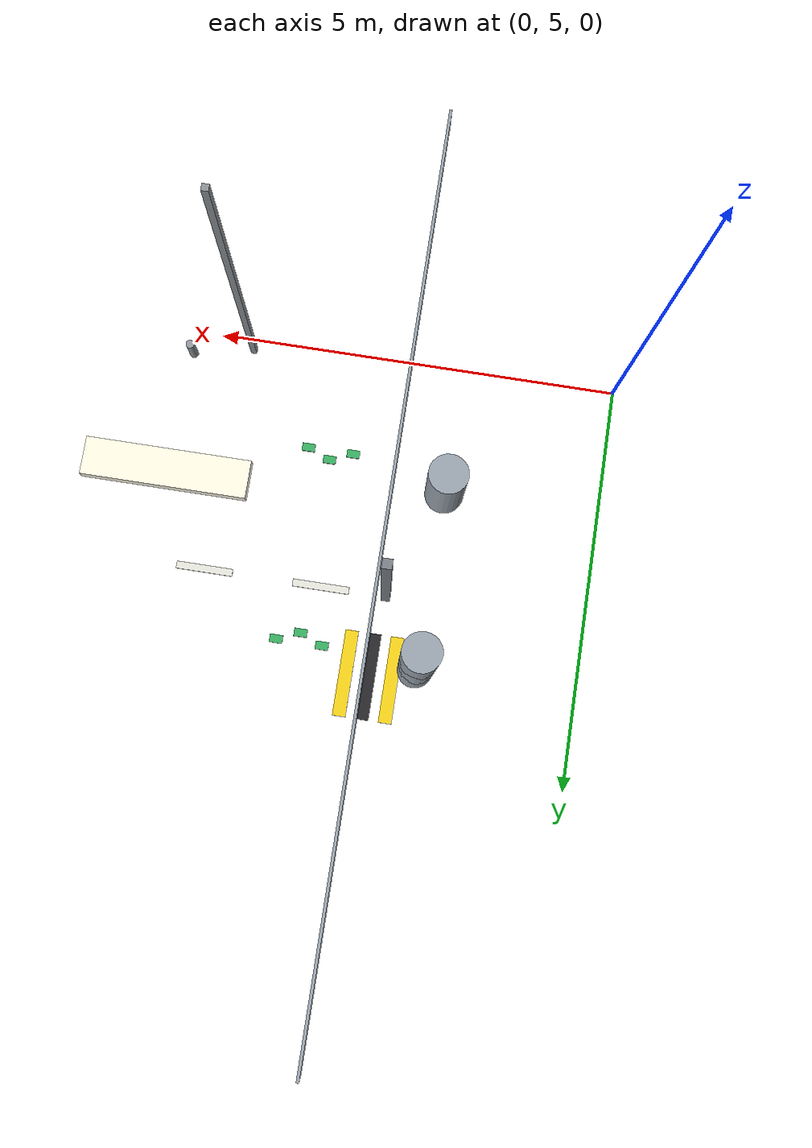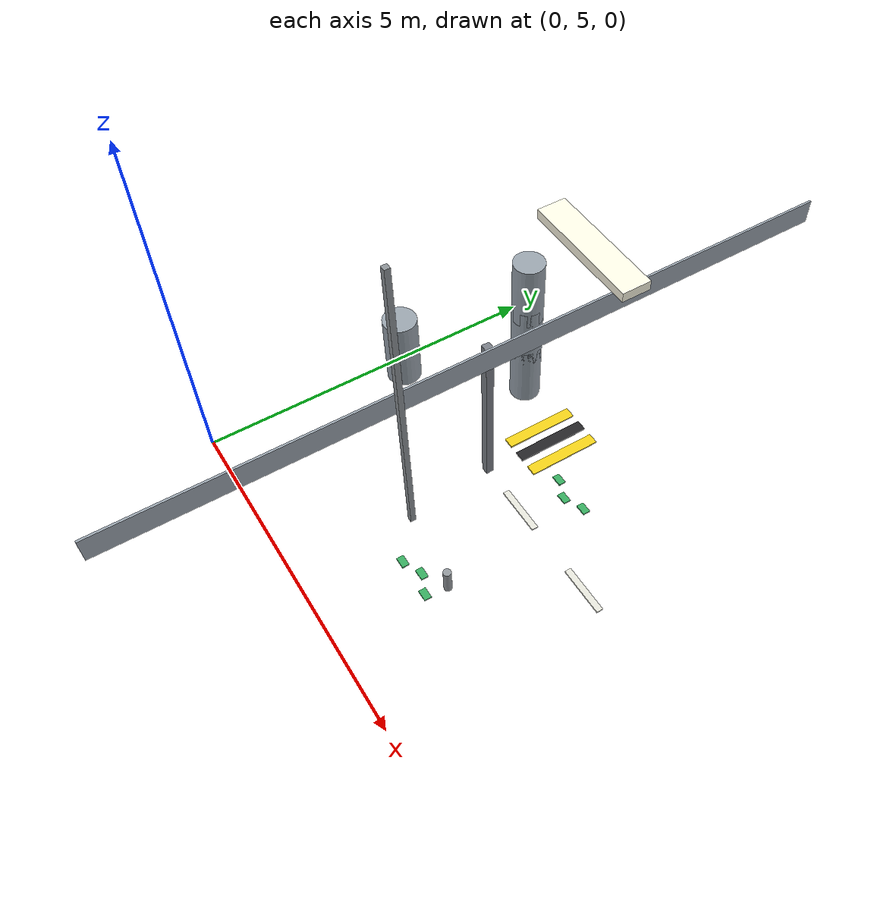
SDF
<sdf version="1.10">
 <world name="textile_mill">
  <model name="lamp_0_1">
   <static>true</static>
   <pose>4.200 8.000 5.280 0 0 0</pose>
   <link name="l">
    <collision name="c"><geometry><box><size>1.300 0.300 0.100</size></box></geometry></collision>
    <visual name="v">
     <geometry><box><size>1.300 0.300 0.100</size></box></geometry>
     <material>
      <ambient>1.000 0.980 0.900 1.0</ambient>
      <diffuse>1.000 0.980 0.900 1.0</diffuse>
      <specular>0.18 0.18 0.18 1</specular>
      <pbr><metal><roughness>0.3</roughness><metalness>0.0</metalness></metal></pbr>
     </material>
    </visual>
   </link>
  </model>
  <model name="clnz_carding_1_1">
   <static>true</static>
   <pose>4.850 6.000 2.280 0.0000 0.0000 0.0000</pose>
   <link name="l">
    <collision name="c">
     <geometry><cylinder><radius>0.045</radius><length>0.300</length></cylinder></geometry>
    </collision>
    <visual name="v">
     <geometry><cylinder><radius>0.045</radius><length>0.300</length></cylinder></geometry>
     <material>
      <ambient>0.580 0.600 0.620 1.0</ambient>
      <diffuse>0.580 0.600 0.620 1.0</diffuse>
      <specular>0.18 0.18 0.18 1</specular>
      <pbr><metal><roughness>0.35</roughness><metalness>0.5</metalness></metal></pbr>
     </material>
    </visual>
   </link>
  </model>
  <model name="clnh_carding_1_0">
   <static>true</static>
   <pose>4.150 6.000 4.260 0 0 0</pose>
   <link name="l">
    <collision name="c"><geometry><box><size>0.060 0.060 3.480</size></box></geometry></collision>
    <visual name="v">
     <geometry><box><size>0.060 0.060 3.480</size></box></geometry>
     <material>
      <ambient>0.550 0.570 0.590 1.0</ambient>
      <diffuse>0.550 0.570 0.590 1.0</diffuse>
      <specular>0.18 0.18 0.18 1</specular>
      <pbr><metal><roughness>0.65</roughness><metalness>0.6</metalness></metal></pbr>
     </material>
    </visual>
   </link>
  </model>
  <model name="dash_1">
   <static>true</static>
   <pose>3.250 8.000 0.012 0 0 0</pose>
   <link name="l">
    <visual name="v">
     <geometry><box><size>0.700 0.090 0.020</size></box></geometry>
     <material>
      <ambient>0.900 0.900 0.860 1.0</ambient>
      <diffuse>0.900 0.900 0.860 1.0</diffuse>
      <specular>0.18 0.18 0.18 1</specular>
      <pbr><metal><roughness>0.65</roughness><metalness>0.0</metalness></metal></pbr>
     </material>
    </visual>
   </link>
  </model>
  <model name="dash_2">
   <static>true</static>
   <pose>4.700 8.000 0.012 0 0 0</pose>
   <link name="l">
    <visual name="v">
     <geometry><box><size>0.700 0.090 0.020</size></box></geometry>
     <material>
      <ambient>0.900 0.900 0.860 1.0</ambient>
      <diffuse>0.900 0.900 0.860 1.0</diffuse>
      <specular>0.18 0.18 0.18 1</specular>
      <pbr><metal><roughness>0.65</roughness><metalness>0.0</metalness></metal></pbr>
     </material>
    </visual>
   </link>
  </model>
  <model name="slot_storage_empty_slot_1_1">
   <static>true</static>
   <pose>3.683 6.283 0.012 0 0 0</pose>
   <link name="l">
    <visual name="v">
     <geometry><box><size>0.160 0.100 0.020</size></box></geometry>
     <material>
      <ambient>0.220 0.680 0.380 1.0</ambient>
      <diffuse>0.220 0.680 0.380 1.0</diffuse>
      <specular>0.18 0.18 0.18 1</specular>
      <pbr><metal><roughness>0.65</roughness><metalness>0.0</metalness></metal></pbr>
     </material>
    </visual>
   </link>
  </model>
  <model name="slot_storage_empty_slot_1_2">
   <static>true</static>
   <pose>3.400 6.400 0.012 0 0 0</pose>
   <link name="l">
    <visual name="v">
     <geometry><box><size>0.160 0.100 0.020</size></box></geometry>
     <material>
      <ambient>0.220 0.680 0.380 1.0</ambient>
      <diffuse>0.220 0.680 0.380 1.0</diffuse>
      <specular>0.18 0.18 0.18 1</specular>
      <pbr><metal><roughness>0.65</roughness><metalness>0.0</metalness></metal></pbr>
     </material>
    </visual>
   </link>
  </model>
  <model name="slot_storage_empty_slot_1_3">
   <static>true</static>
   <pose>3.117 6.283 0.012 0 0 0</pose>
   <link name="l">
    <visual name="v">
     <geometry><box><size>0.160 0.100 0.020</size></box></geometry>
     <material>
      <ambient>0.220 0.680 0.380 1.0</ambient>
      <diffuse>0.220 0.680 0.380 1.0</diffuse>
      <specular>0.18 0.18 0.18 1</specular>
      <pbr><metal><roughness>0.65</roughness><metalness>0.0</metalness></metal></pbr>
     </material>
    </visual>
   </link>
  </model>
  <model name="slot_storage_empty_slot_2_5">
   <static>true</static>
   <pose>3.117 8.717 0.012 0 0 0</pose>
   <link name="l">
    <visual name="v">
     <geometry><box><size>0.160 0.100 0.020</size></box></geometry>
     <material>
      <ambient>0.220 0.680 0.380 1.0</ambient>
      <diffuse>0.220 0.680 0.380 1.0</diffuse>
      <specular>0.18 0.18 0.18 1</specular>
      <pbr><metal><roughness>0.65</roughness><metalness>0.0</metalness></metal></pbr>
     </material>
    </visual>
   </link>
  </model>
  <model name="slot_storage_empty_slot_2_6">
   <static>true</static>
   <pose>3.400 8.600 0.012 0 0 0</pose>
   <link name="l">
    <visual name="v">
     <geometry><box><size>0.160 0.100 0.020</size></box></geometry>
     <material>
      <ambient>0.220 0.680 0.380 1.0</ambient>
      <diffuse>0.220 0.680 0.380 1.0</diffuse>
      <specular>0.18 0.18 0.18 1</specular>
      <pbr><metal><roughness>0.65</roughness><metalness>0.0</metalness></metal></pbr>
     </material>
    </visual>
   </link>
  </model>
  <model name="slot_storage_empty_slot_2_7">
   <static>true</static>
   <pose>3.683 8.717 0.012 0 0 0</pose>
   <link name="l">
    <visual name="v">
     <geometry><box><size>0.160 0.100 0.020</size></box></geometry>
     <material>
      <ambient>0.220 0.680 0.380 1.0</ambient>
      <diffuse>0.220 0.680 0.380 1.0</diffuse>
      <specular>0.18 0.18 0.18 1</specular>
      <pbr><metal><roughness>0.65</roughness><metalness>0.0</metalness></metal></pbr>
     </material>
    </visual>
   </link>
  </model>
  <model name="hz_empty_2_0">
   <static>true</static>
   <pose>2.780 9.000 0.012 0 0 0</pose>
   <link name="l">
    <visual name="v">
     <geometry><box><size>0.160 1.050 0.020</size></box></geometry>
     <material>
      <ambient>0.950 0.820 0.100 1.0</ambient>
      <diffuse>0.950 0.820 0.100 1.0</diffuse>
      <specular>0.18 0.18 0.18 1</specular>
      <pbr><metal><roughness>0.65</roughness><metalness>0.0</metalness></metal></pbr>
     </material>
    </visual>
   </link>
  </model>
  <model name="hz_empty_2_1">
   <static>true</static>
   <pose>2.500 9.000 0.012 0 0 0</pose>
   <link name="l">
    <visual name="v">
     <geometry><box><size>0.160 1.050 0.020</size></box></geometry>
     <material>
      <ambient>0.150 0.150 0.160 1.0</ambient>
      <diffuse>0.150 0.150 0.160 1.0</diffuse>
      <specular>0.18 0.18 0.18 1</specular>
      <pbr><metal><roughness>0.65</roughness><metalness>0.0</metalness></metal></pbr>
     </material>
    </visual>
   </link>
  </model>
  <model name="hz_empty_2_2">
   <static>true</static>
   <pose>2.220 9.000 0.012 0 0 0</pose>
   <link name="l">
    <visual name="v">
     <geometry><box><size>0.160 1.050 0.020</size></box></geometry>
     <material>
      <ambient>0.950 0.820 0.100 1.0</ambient>
      <diffuse>0.950 0.820 0.100 1.0</diffuse>
      <specular>0.18 0.18 0.18 1</specular>
      <pbr><metal><roughness>0.65</roughness><metalness>0.0</metalness></metal></pbr>
     </material>
    </visual>
   </link>
  </model>
  <model name="rack_empty_can_0_3_b">
   <static>true</static>
   <pose>1.968 8.890 1.120 0.0000 0.0000 0.0000</pose>
   <link name="l">
    <collision name="c">
     <geometry><cylinder><radius>0.205</radius><length>0.900</length></cylinder></geometry>
    </collision>
    <visual name="v">
     <geometry><cylinder><radius>0.205</radius><length>0.900</length></cylinder></geometry>
     <material>
      <ambient>0.600 0.640 0.680 1.0</ambient>
      <diffuse>0.600 0.640 0.680 1.0</diffuse>
      <specular>0.18 0.18 0.18 1</specular>
      <pbr><metal><roughness>0.6</roughness><metalness>0.0</metalness></metal></pbr>
     </material>
    </visual>
   </link>
  </model>
  <model name="rack_empty_can_1_3_b">
   <static>true</static>
   <pose>1.968 8.890 1.820 0.0000 0.0000 0.0000</pose>
   <link name="l">
    <collision name="c">
     <geometry><cylinder><radius>0.205</radius><length>0.900</length></cylinder></geometry>
    </collision>
    <visual name="v">
     <geometry><cylinder><radius>0.205</radius><length>0.900</length></cylinder></geometry>
     <material>
      <ambient>0.600 0.640 0.680 1.0</ambient>
      <diffuse>0.600 0.640 0.680 1.0</diffuse>
      <specular>0.18 0.18 0.18 1</specular>
      <pbr><metal><roughness>0.6</roughness><metalness>0.0</metalness></metal></pbr>
     </material>
    </visual>
   </link>
  </model>
  <model name="rack_empty_can_2_2_b">
   <static>true</static>
   <pose>1.968 7.110 2.520 0.0000 0.0000 0.0000</pose>
   <link name="l">
    <collision name="c">
     <geometry><cylinder><radius>0.205</radius><length>0.900</length></cylinder></geometry>
    </collision>
    <visual name="v">
     <geometry><cylinder><radius>0.205</radius><length>0.900</length></cylinder></geometry>
     <material>
      <ambient>0.600 0.640 0.680 1.0</ambient>
      <diffuse>0.600 0.640 0.680 1.0</diffuse>
      <specular>0.18 0.18 0.18 1</specular>
      <pbr><metal><roughness>0.6</roughness><metalness>0.0</metalness></metal></pbr>
     </material>
    </visual>
   </link>
  </model>
  <model name="rack_empty_can_2_3_b">
   <static>true</static>
   <pose>1.968 8.890 2.520 0.0000 0.0000 0.0000</pose>
   <link name="l">
    <collision name="c">
     <geometry><cylinder><radius>0.205</radius><length>0.900</length></cylinder></geometry>
    </collision>
    <visual name="v">
     <geometry><cylinder><radius>0.205</radius><length>0.900</length></cylinder></geometry>
     <material>
      <ambient>0.600 0.640 0.680 1.0</ambient>
      <diffuse>0.600 0.640 0.680 1.0</diffuse>
      <specular>0.18 0.18 0.18 1</specular>
      <pbr><metal><roughness>0.6</roughness><metalness>0.0</metalness></metal></pbr>
     </material>
    </visual>
   </link>
  </model>
  <model name="rack_empty_post_2_b">
   <static>true</static>
   <pose>2.440 8.000 1.220 0 0 0</pose>
   <link name="l">
    <collision name="c"><geometry><box><size>0.110 0.110 2.440</size></box></geometry></collision>
    <visual name="v">
     <geometry><box><size>0.110 0.110 2.440</size></box></geometry>
     <material>
      <ambient>0.480 0.500 0.530 1.0</ambient>
      <diffuse>0.480 0.500 0.530 1.0</diffuse>
      <specular>0.18 0.18 0.18 1</specular>
      <pbr><metal><roughness>0.65</roughness><metalness>0.5</metalness></metal></pbr>
     </material>
    </visual>
   </link>
  </model>
  <model name="rack_empty_label">
   <static>true</static>
   <pose>2.520 8.000 2.300 0 0 0</pose>
   <link name="l">
    <collision name="c"><geometry><box><size>0.030 10.100 0.340</size></box></geometry></collision>
    <visual name="v">
     <geometry><box><size>0.030 10.100 0.340</size></box></geometry>
     <material>
      <ambient>0.600 0.640 0.680 1.0</ambient>
      <diffuse>0.600 0.640 0.680 1.0</diffuse>
      <specular>0.18 0.18 0.18 1</specular>
      <pbr><metal><roughness>0.65</roughness><metalness>0.0</metalness></metal></pbr>
     </material>
    </visual>
   </link>
  </model>
 </world>
</sdf>
